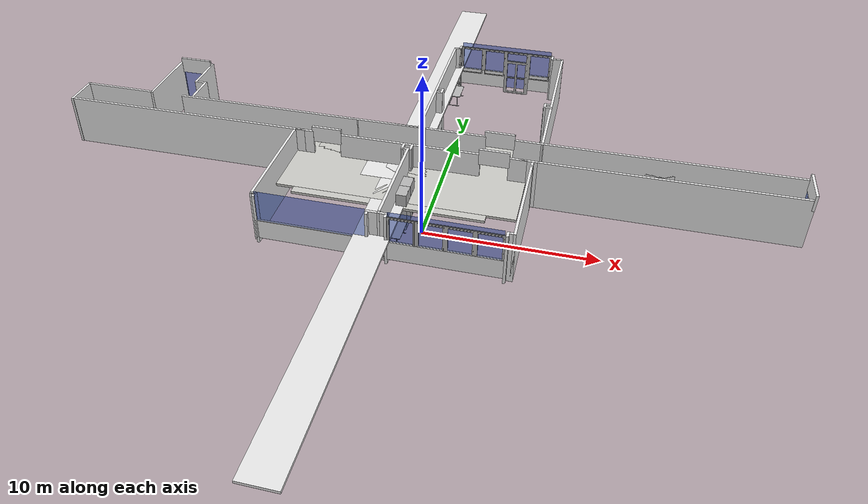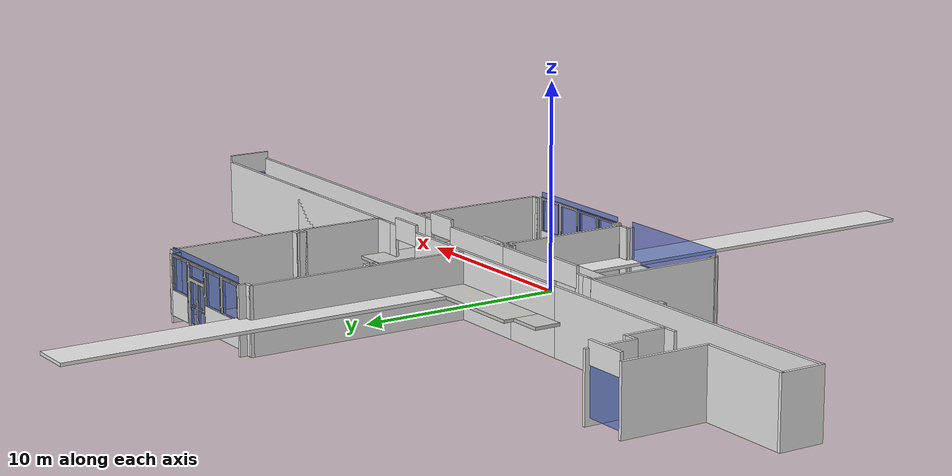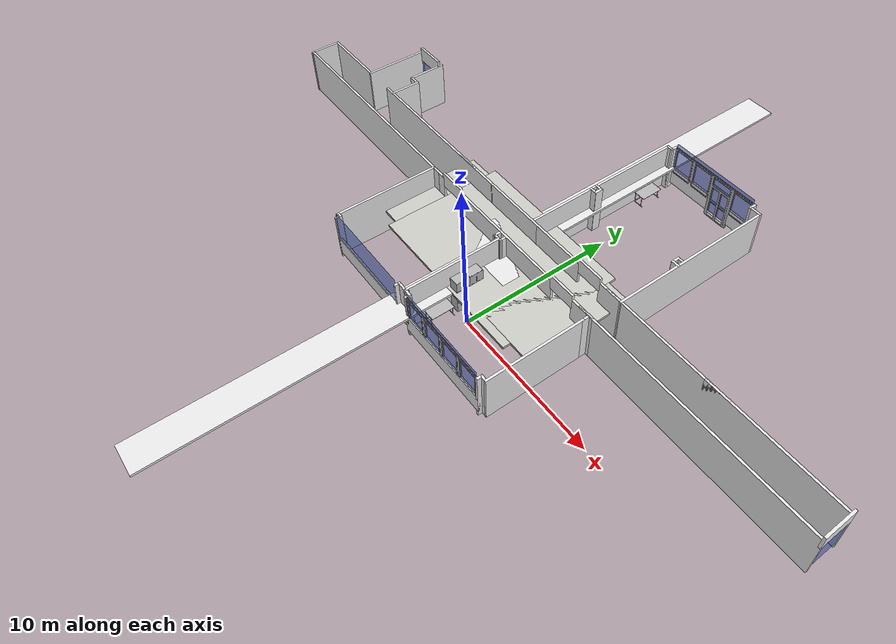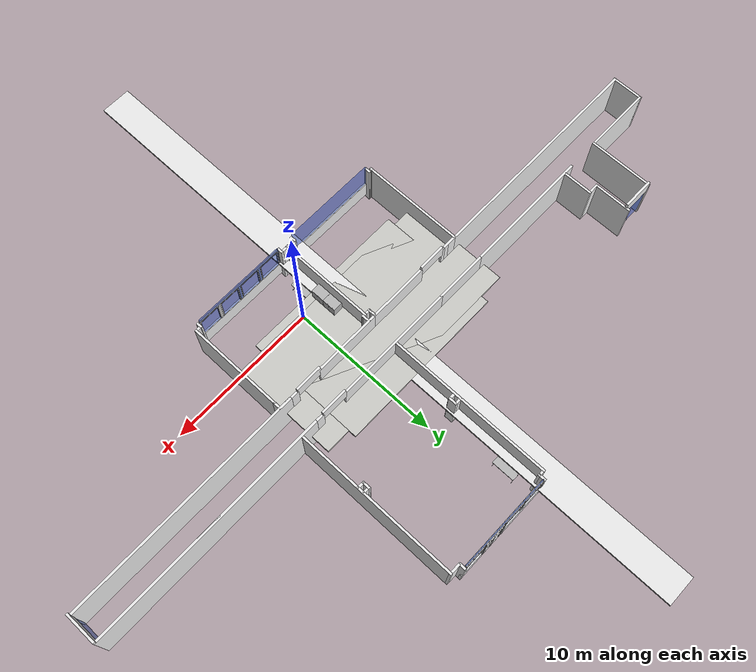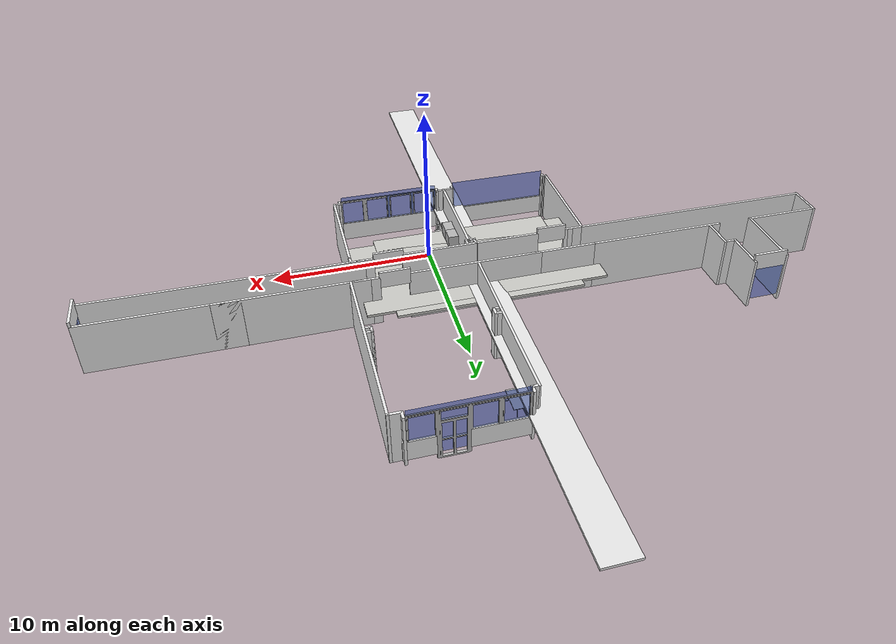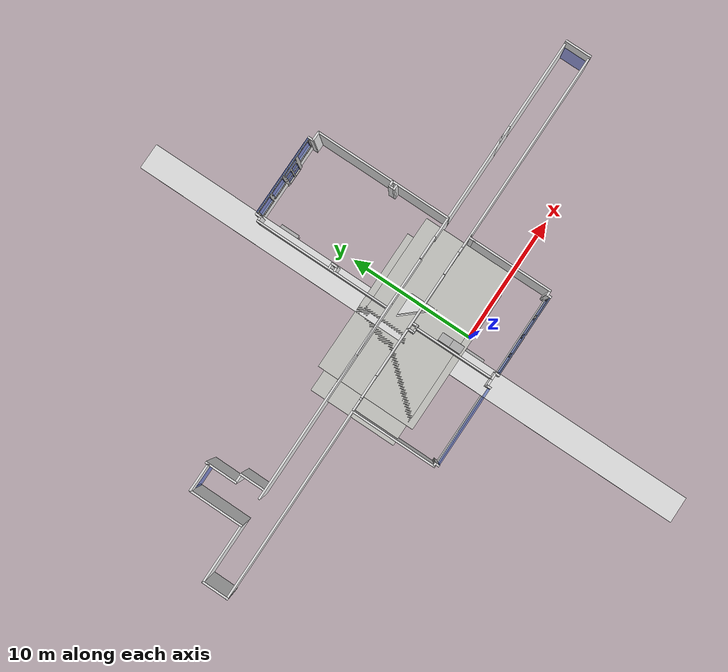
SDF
<sdf version="1.7">
 <world name="default">
  <model name="skola">
   <pose>-1.5 7 0.34 0 -0 0</pose>
   <link name="Wall_0">
    <collision name="Wall_0_Collision">
     <geometry><box><size>4 0.15 3.18</size></box></geometry>
     <pose>0 0 1.25 0 -0 0</pose>
    </collision>
    <visual name="Wall_0_Visual">
     <pose>0 0 1.25 0 -0 0</pose>
     <geometry><box><size>4 0.15 3.18</size></box></geometry>
     <material>
      <script><uri>file://media/materials/scripts/gazebo.material</uri><name>Gazebo/White</name></script>
      <ambient>0.921569 0.807843 0.615686 1</ambient>
     </material>
     <meta><layer>0</layer></meta>
    </visual>
    <pose>-2.46639 -3.07195 0 0 -0 0</pose>
   </link>
   <link name="Wall_1">
    <collision name="Wall_1_Collision">
     <geometry><box><size>0.5 0.15 3.18</size></box></geometry>
     <pose>0 0 1.25 0 -0 0</pose>
    </collision>
    <visual name="Wall_1_Visual">
     <pose>0 0 1.25 0 -0 0</pose>
     <geometry><box><size>0.5 0.15 3.18</size></box></geometry>
     <material>
      <script><uri>file://media/materials/scripts/gazebo.material</uri><name>Gazebo/White</name></script>
      <ambient>0.921569 0.807843 0.615686 1</ambient>
     </material>
     <meta><layer>0</layer></meta>
    </visual>
    <pose>-0.541394 -3.24695 0 0 -0 -1.5708</pose>
   </link>
   <link name="Strop_1">
    <collision name="Strop_1_Collision">
     <geometry><box><size>6.9 14.5 0.15</size></box></geometry>
     <pose>0 0 1.25 0 -0 0</pose>
    </collision>
    <visual name="Strop_1_Visual">
     <pose>0 0 1.25 0 -0 0</pose>
     <geometry><box><size>6.9 14.5 0.15</size></box></geometry>
     <material>
      <script><uri>file://media/materials/scripts/gazebo.material</uri><name>Gazebo/CeilingTiled</name></script>
      <ambient>0.921569 0.807843 0.615686 1</ambient>
     </material>
     <meta><layer>0</layer></meta>
    </visual>
    <pose>-0.541394 -3.24695 0 0 -0 -1.5708</pose>
   </link>
   <link name="Strop_2">
    <collision name="Strop_2_Collision">
     <geometry><box><size>7.9 11.2 0.15</size></box></geometry>
     <pose>0 0 1.25 0 -0 0</pose>
    </collision>
    <visual name="Strop_2_Visual">
     <pose>0 0 1.25 0 -0 0</pose>
     <geometry><box><size>7.9 11.2 0.15</size></box></geometry>
     <material>
      <script><uri>file://media/materials/scripts/gazebo.material</uri><name>Gazebo/CeilingTiled</name></script>
      <ambient>0.921569 0.807843 0.615686 1</ambient>
     </material>
     <meta><layer>0</layer></meta>
    </visual>
    <pose>-0.541394 -3.24695 0 0 -0 -1.5708</pose>
   </link>
   <link name="Strop_3">
    <collision name="Strop_3_Collision">
     <geometry><box><size>44.5 2 0.15</size></box></geometry>
     <pose>0 0 1.25 0 -0 0</pose>
    </collision>
    <visual name="Strop_3_Visual">
     <pose>0 0 1.25 0 -0 0</pose>
     <geometry><box><size>44.5 2 0.15</size></box></geometry>
     <material>
      <script><uri>file://media/materials/scripts/gazebo.material</uri><name>Gazebo/White</name></script>
      <ambient>0.921569 0.807843 0.615686 1</ambient>
     </material>
     <meta><layer>0</layer></meta>
    </visual>
    <pose>-0.541394 -3.24695 0 0 -0 -1.5708</pose>
   </link>
   <link name="Strop_4">
    <collision name="Strop_4_Collision">
     <geometry><box><size>2.8 4.5 0.15</size></box></geometry>
     <pose>0 0 1.25 0 -0 0</pose>
    </collision>
    <visual name="Strop_4_Visual">
     <pose>0 0 1.25 0 -0 0</pose>
     <geometry><box><size>2.8 4.5 0.15</size></box></geometry>
     <material>
      <script><uri>file://media/materials/scripts/gazebo.material</uri><name>Gazebo/White</name></script>
      <ambient>0.921569 0.807843 0.615686 1</ambient>
     </material>
     <meta><layer>0</layer></meta>
    </visual>
    <pose>-0.541394 -3.24695 0 0 -0 -1.5708</pose>
   </link>
   <link name="Wall_100">
    <collision name="Wall_100_Collision">
     <geometry><box><size>0.6 0.15 3.18</size></box></geometry>
     <pose>0 0 1.25 0 -0 0</pose>
    </collision>
    <visual name="Wall_100_Visual">
     <pose>0 0 1.25 0 -0 0</pose>
     <geometry><box><size>0.6 0.15 3.18</size></box></geometry>
     <material>
      <script><uri>file://media/materials/scripts/gazebo.material</uri><name>Gazebo/White</name></script>
      <ambient>0.921569 0.807843 0.615686 1</ambient>
     </material>
     <meta><layer>0</layer></meta>
    </visual>
    <pose>6.98329 -3.07195 0 0 -0 0</pose>
   </link>
   <link name="Wall_102">
    <collision name="Wall_102_Collision">
     <geometry><box><size>2.13 0.15 3.18</size></box></geometry>
     <pose>0 0 1.25 0 -0 0</pose>
    </collision>
    <visual name="Wall_102_Visual">
     <pose>0 0 1.25 0 -0 0</pose>
     <geometry><box><size>2.13 0.15 3.18</size></box></geometry>
     <material>
      <script><uri>file://media/materials/scripts/gazebo.material</uri><name>Gazebo/White</name></script>
      <ambient>0.921569 0.807843 0.615686 1</ambient>
     </material>
     <meta><layer>0</layer></meta>
    </visual>
    <pose>-22.3067 -2.1155 0 0 -0 1.5708</pose>
   </link>
   <link name="Wall_104">
    <collision name="Wall_104_Collision">
     <geometry><box><size>3.44231 0.15 3.18</size></box></geometry>
     <pose>0 0 1.25 0 -0 0</pose>
    </collision>
    <visual name="Wall_104_Visual">
     <pose>0 0 1.25 0 -0 0</pose>
     <geometry><box><size>3.44231 0.15 3.18</size></box></geometry>
     <material>
      <script><uri>file://media/materials/scripts/gazebo.material</uri><name>Gazebo/White</name></script>
      <ambient>0.921569 0.807843 0.615686 1</ambient>
     </material>
     <meta><layer>0</layer></meta>
    </visual>
    <pose>-5.66059 -1.12687 0 0 -0 3.14076</pose>
   </link>
   <link name="Wall_12">
    <collision name="Wall_12_Collision">
     <geometry><box><size>0.25 0.15 3.18</size></box></geometry>
     <pose>0 0 1.25 0 -0 0</pose>
    </collision>
    <visual name="Wall_12_Visual">
     <pose>0 0 1.25 0 -0 0</pose>
     <geometry><box><size>0.25 0.15 3.18</size></box></geometry>
     <material>
      <script><uri>file://media/materials/scripts/gazebo.material</uri><name>Gazebo/White</name></script>
      <ambient>1 1 1 1</ambient>
     </material>
     <meta><layer>0</layer></meta>
    </visual>
    <pose>-0.191552 -9.67173 0 0 -0 -1.57396</pose>
   </link>
   <link name="Wall_13">
    <collision name="Wall_13_Collision">
     <geometry><box><size>0.75 0.15 3.18</size></box></geometry>
     <pose>0 0 1.25 0 -0 0</pose>
    </collision>
    <visual name="Wall_13_Visual">
     <pose>0 0 1.25 0 -0 0</pose>
     <geometry><box><size>0.75 0.15 3.18</size></box></geometry>
     <material>
      <script><uri>file://media/materials/scripts/gazebo.material</uri><name>Gazebo/White</name></script>
      <ambient>0.921569 0.807843 0.615686 1</ambient>
     </material>
     <meta><layer>0</layer></meta>
    </visual>
    <pose>-0.491552 -9.72173 0 0 -0 -3.14084</pose>
   </link>
   <link name="Wall_14">
    <collision name="Wall_14_Collision">
     <geometry><box><size>0.390555 0.15 3.18</size></box></geometry>
     <pose>0 0 1.25 0 -0 0</pose>
    </collision>
    <visual name="Wall_14_Visual">
     <pose>0 0 1.25 0 -0 0</pose>
     <geometry><box><size>0.390555 0.15 3.18</size></box></geometry>
     <material>
      <script><uri>file://media/materials/scripts/gazebo.material</uri><name>Gazebo/White</name></script>
      <ambient>0.921569 0.807843 0.615686 1</ambient>
     </material>
     <meta><layer>0</layer></meta>
    </visual>
    <pose>-0.791394 -9.84223 0 0 -0 -1.5708</pose>
   </link>
   <link name="Wall_15">
    <collision name="Wall_15_Collision">
     <geometry><box><size>6.47657 0.15 1.2</size></box></geometry>
     <pose>0 0 0.6 0 -0 0</pose>
    </collision>
    <visual name="Wall_15_Visual">
     <pose>0 0 0.6 0 -0 0</pose>
     <geometry><box><size>6.47657 0.15 1.2</size></box></geometry>
     <material>
      <script><uri>file://media/materials/scripts/gazebo.material</uri><name>Gazebo/White</name></script>
      <ambient>0.921569 0.807843 0.615686 1</ambient>
     </material>
     <meta><layer>0</layer></meta>
    </visual>
    <pose>-3.94685 -9.95469 0 0 -0 3.13912</pose>
   </link>
   <link name="Wall_16">
    <collision name="Wall_16_Collision">
     <geometry><box><size>6.2 0.05 2</size></box></geometry>
     <pose>0 0 0.6 0 -0 0</pose>
    </collision>
    <visual name="Wall_16_Visual">
     <pose>0 0 0.6 0 -0 0</pose>
     <geometry><box><size>6.2 0.05 2</size></box></geometry>
     <material>
      <script><uri>file://media/materials/scripts/gazebo.material</uri><name>Gazebo/BlueTransparent</name></script>
      <ambient>0.921569 0.807843 0.615686 1</ambient>
     </material>
     <meta><layer>0</layer></meta>
    </visual>
    <pose>-3.94685 -9.95469 1.5 0 -0 3.13912</pose>
   </link>
   <link name="Wall_17">
    <collision name="Wall_17_Collision">
     <geometry><box><size>6.2 0.05 2</size></box></geometry>
     <pose>0 0 0.6 0 -0 0</pose>
    </collision>
    <visual name="Wall_17_Visual">
     <pose>0 0 0.6 0 -0 0</pose>
     <geometry><box><size>6.2 0.05 2</size></box></geometry>
     <material>
      <script><uri>file://media/materials/scripts/gazebo.material</uri><name>Gazebo/BlueTransparent</name></script>
      <ambient>0.921569 0.807843 0.615686 1</ambient>
     </material>
     <meta><layer>0</layer></meta>
    </visual>
    <pose>3.44 -9.95469 1.5 0 -0 3.13912</pose>
   </link>
   <link name="Wall_18">
    <collision name="Wall_18_Collision">
     <geometry><box><size>1.15224 0.15 3.18</size></box></geometry>
     <pose>0 0 1.25 0 -0 0</pose>
    </collision>
    <visual name="Wall_18_Visual">
     <pose>0 0 1.25 0 -0 0</pose>
     <geometry><box><size>1.15224 0.15 3.18</size></box></geometry>
     <material>
      <script><uri>file://media/materials/scripts/gazebo.material</uri><name>Gazebo/White</name></script>
      <ambient>0.921569 0.807843 0.615686 1</ambient>
     </material>
     <meta><layer>0</layer></meta>
    </visual>
    <pose>-6.70571 -3.072 0 0 -0 3.1396</pose>
   </link>
   <link name="Wall_2">
    <collision name="Wall_2_Collision">
     <geometry><box><size>0.25 0.15 3.18</size></box></geometry>
     <pose>0 0 1.25 0 -0 0</pose>
    </collision>
    <visual name="Wall_2_Visual">
     <pose>0 0 1.25 0 -0 0</pose>
     <geometry><box><size>0.25 0.15 3.18</size></box></geometry>
     <material>
      <script><uri>file://media/materials/scripts/gazebo.material</uri><name>Gazebo/White</name></script>
      <ambient>1 1 1 1</ambient>
     </material>
     <meta><layer>0</layer></meta>
    </visual>
    <pose>-0.541394 -3.47195 0 0 -0 -1.5708</pose>
   </link>
   <link name="Wall_22">
    <collision name="Wall_22_Collision">
     <geometry><box><size>6.74777 0.15 3.18</size></box></geometry>
     <pose>0 0 1.25 0 -0 0</pose>
    </collision>
    <visual name="Wall_22_Visual">
     <pose>0 0 1.25 0 -0 0</pose>
     <geometry><box><size>6.74777 0.15 3.18</size></box></geometry>
     <material>
      <script><uri>file://media/materials/scripts/gazebo.material</uri><name>Gazebo/White</name></script>
      <ambient>0.921569 0.807843 0.615686 1</ambient>
     </material>
     <meta><layer>0</layer></meta>
    </visual>
    <pose>-7.30671 -6.4345 0 0 -0 -1.5708</pose>
   </link>
   <link name="Wall_23">
    <collision name="Wall_23_Collision">
     <geometry><box><size>0.15 0.15 3.18</size></box></geometry>
     <pose>0 0 1.25 0 -0 0</pose>
    </collision>
    <visual name="Wall_23_Visual">
     <pose>0 0 1.25 0 -0 0</pose>
     <geometry><box><size>0.15 0.15 3.18</size></box></geometry>
     <material>
      <script><uri>file://media/materials/scripts/gazebo.material</uri><name>Gazebo/White</name></script>
      <ambient>1 1 1 1</ambient>
     </material>
     <meta><layer>0</layer></meta>
    </visual>
    <pose>-7.30671 -9.7035 0 0 -0 0</pose>
   </link>
   <link name="Wall_25">
    <collision name="Wall_25_Collision">
     <geometry><box><size>0.15 0.15 3.18</size></box></geometry>
     <pose>0 0 1.25 0 -0 0</pose>
    </collision>
    <visual name="Wall_25_Visual">
     <pose>0 0 1.25 0 -0 0</pose>
     <geometry><box><size>0.15 0.15 3.18</size></box></geometry>
     <material>
      <script><uri>file://media/materials/scripts/gazebo.material</uri><name>Gazebo/White</name></script>
      <ambient>0.921569 0.807843 0.615686 1</ambient>
     </material>
     <meta><layer>0</layer></meta>
    </visual>
    <pose>-7.30671 -9.7035 0 0 -0 0</pose>
   </link>
   <link name="Wall_27">
    <collision name="Wall_27_Collision">
     <geometry><box><size>0.351876 0.15 3.18</size></box></geometry>
     <pose>0 0 1.25 0 -0 0</pose>
    </collision>
    <visual name="Wall_27_Visual">
     <pose>0 0 1.25 0 -0 0</pose>
     <geometry><box><size>0.351876 0.15 3.18</size></box></geometry>
     <material>
      <script><uri>file://media/materials/scripts/gazebo.material</uri><name>Gazebo/White</name></script>
      <ambient>0.921569 0.807843 0.615686 1</ambient>
     </material>
     <meta><layer>0</layer></meta>
    </visual>
    <pose>-7.20607 -9.69568 0 0 -0 0.077526</pose>
   </link>
   <link name="Wall_28">
    <collision name="Wall_28_Collision">
     <geometry><box><size>0.409049 0.15 3.18</size></box></geometry>
     <pose>0 0 1.25 0 -0 0</pose>
    </collision>
    <visual name="Wall_28_Visual">
     <pose>0 0 1.25 0 -0 0</pose>
     <geometry><box><size>0.409049 0.15 3.18</size></box></geometry>
     <material>
      <script><uri>file://media/materials/scripts/gazebo.material</uri><name>Gazebo/White</name></script>
      <ambient>0.921569 0.807843 0.615686 1</ambient>
     </material>
     <meta><layer>0</layer></meta>
    </visual>
    <pose>-7.09996 -9.81737 0 0 -0 -1.58888</pose>
   </link>
   <link name="Wall_3">
    <collision name="Wall_3_Collision">
     <geometry><box><size>0.5 0.15 3.18</size></box></geometry>
     <pose>0 0 1.25 0 -0 0</pose>
    </collision>
    <visual name="Wall_3_Visual">
     <pose>0 0 1.25 0 -0 0</pose>
     <geometry><box><size>0.5 0.15 3.18</size></box></geometry>
     <material>
      <script><uri>file://media/materials/scripts/gazebo.material</uri><name>Gazebo/White</name></script>
      <ambient>0.921569 0.807843 0.615686 1</ambient>
     </material>
     <meta><layer>0</layer></meta>
    </visual>
    <pose>-0.366552 -3.52173 0 0 -0 0.001291</pose>
   </link>
   <link name="Wall_31">
    <collision name="Wall_31_Collision">
     <geometry><box><size>0.3 0.15 3.18</size></box></geometry>
     <pose>0 0 1.25 0 -0 0</pose>
    </collision>
    <visual name="Wall_31_Visual">
     <pose>0 0 1.25 0 -0 0</pose>
     <geometry><box><size>0.3 0.15 3.18</size></box></geometry>
     <material>
      <script><uri>file://media/materials/scripts/gazebo.material</uri><name>Gazebo/White</name></script>
      <ambient>1 1 1 1</ambient>
     </material>
     <meta><layer>0</layer></meta>
    </visual>
    <pose>-0.116709 -3.5215 0 0 -0 0</pose>
   </link>
   <link name="Wall_34">
    <collision name="Wall_34_Collision">
     <geometry><box><size>4.6 0.15 3.18</size></box></geometry>
     <pose>0 0 1.25 0 -0 0</pose>
    </collision>
    <visual name="Wall_34_Visual">
     <pose>0 0 1.25 0 -0 0</pose>
     <geometry><box><size>4.6 0.15 3.18</size></box></geometry>
     <material>
      <script><uri>file://media/materials/scripts/gazebo.material</uri><name>Gazebo/White</name></script>
      <ambient>0.921569 0.807843 0.615686 1</ambient>
     </material>
     <meta><layer>0</layer></meta>
    </visual>
    <pose>1.68361 -3.07195 0 0 -0 0</pose>
   </link>
   <link name="Wall_41">
    <collision name="Wall_41_Collision">
     <geometry><box><size>0.592756 0.15 3.18</size></box></geometry>
     <pose>0 0 1.25 0 -0 0</pose>
    </collision>
    <visual name="Wall_41_Visual">
     <pose>0 0 1.25 0 -0 0</pose>
     <geometry><box><size>0.592756 0.15 3.18</size></box></geometry>
     <material>
      <script><uri>file://media/materials/scripts/gazebo.material</uri><name>Gazebo/White</name></script>
      <ambient>0.921569 0.807843 0.615686 1</ambient>
     </material>
     <meta><layer>0</layer></meta>
    </visual>
    <pose>-0.043425 -3.30013 0 0 -0 -1.56305</pose>
   </link>
   <link name="Wall_43">
    <collision name="Wall_43_Collision">
     <geometry><box><size>0.55 0.15 3.18</size></box></geometry>
     <pose>0 0 1.25 0 -0 0</pose>
    </collision>
    <visual name="Wall_43_Visual">
     <pose>0 0 1.25 0 -0 0</pose>
     <geometry><box><size>0.55 0.15 3.18</size></box></geometry>
     <material>
      <script><uri>file://media/materials/scripts/gazebo.material</uri><name>Gazebo/White</name></script>
      <ambient>0.921569 0.807843 0.615686 1</ambient>
     </material>
     <meta><layer>0</layer></meta>
    </visual>
    <pose>0.008291 -9.7215 0 0 -0 0</pose>
   </link>
   <link name="Wall_45">
    <collision name="Wall_45_Collision">
     <geometry><box><size>0.4 0.15 3.18</size></box></geometry>
     <pose>0 0 1.25 0 -0 0</pose>
    </collision>
    <visual name="Wall_45_Visual">
     <pose>0 0 1.25 0 -0 0</pose>
     <geometry><box><size>0.4 0.15 3.18</size></box></geometry>
     <material>
      <script><uri>file://media/materials/scripts/gazebo.material</uri><name>Gazebo/White</name></script>
      <ambient>0.921569 0.807843 0.615686 1</ambient>
     </material>
     <meta><layer>0</layer></meta>
    </visual>
    <pose>0.25291 -9.8465 0 0 -0 -1.5708</pose>
   </link>
   <link name="Wall_48">
    <collision name="Wall_48_Collision">
     <geometry><box><size>6.6 0.15 1.2</size></box></geometry>
     <pose>0 0 0.6 0 -0 0</pose>
    </collision>
    <visual name="Wall_48_Visual">
     <pose>0 0 0.6 0 -0 0</pose>
     <geometry><box><size>6.6 0.15 1.2</size></box></geometry>
     <material>
      <script><uri>file://media/materials/scripts/gazebo.material</uri><name>Gazebo/White</name></script>
      <ambient>0.921569 0.807843 0.615686 1</ambient>
     </material>
     <meta><layer>0</layer></meta>
    </visual>
    <pose>3.43329 -9.9715 0 0 -0 0</pose>
   </link>
   <link name="Wall_49">
    <collision name="Wall_49_Collision">
     <geometry><box><size>6.2 0.05 3.1</size></box></geometry>
     <pose>0 0 0.6 0 -0 0</pose>
    </collision>
    <visual name="Wall_49_Visual">
     <pose>0 0 0.6 0 -0 0</pose>
     <geometry><box><size>6.2 0.05 3.1</size></box></geometry>
     <material>
      <script><uri>file://media/materials/scripts/gazebo.material</uri><name>Gazebo/BlueTransparent</name></script>
      <ambient>0.921569 0.807843 0.615686 1</ambient>
     </material>
     <meta><layer>0</layer></meta>
    </visual>
    <pose>3.43329 9.95 1 0 -0 3.14</pose>
   </link>
   <link name="Wall_5">
    <collision name="Wall_5_Collision">
     <geometry><box><size>6.25 0.15 3.18</size></box></geometry>
     <pose>0 0 1.25 0 -0 0</pose>
    </collision>
    <visual name="Wall_5_Visual">
     <pose>0 0 1.25 0 -0 0</pose>
     <geometry><box><size>6.25 0.15 3.18</size></box></geometry>
     <material>
      <script><uri>file://media/materials/scripts/gazebo.material</uri><name>Gazebo/White</name></script>
      <ambient>0.921569 0.807843 0.615686 1</ambient>
     </material>
     <meta><layer>0</layer></meta>
    </visual>
    <pose>-0.191552 -6.57173 0 0 -0 -1.57075</pose>
   </link>
   <link name="Wall_50">
    <collision name="Wall_50_Collision">
     <geometry><box><size>0.4 0.15 3.18</size></box></geometry>
     <pose>0 0 1.25 0 -0 0</pose>
    </collision>
    <visual name="Wall_50_Visual">
     <pose>0 0 1.25 0 -0 0</pose>
     <geometry><box><size>0.4 0.15 3.18</size></box></geometry>
     <material>
      <script><uri>file://media/materials/scripts/gazebo.material</uri><name>Gazebo/White</name></script>
      <ambient>0.921569 0.807843 0.615686 1</ambient>
     </material>
     <meta><layer>0</layer></meta>
    </visual>
    <pose>6.65829 -9.8465 0 0 -0 1.5708</pose>
   </link>
   <link name="Wall_53">
    <collision name="Wall_53_Collision">
     <geometry><box><size>0.5 0.15 3.18</size></box></geometry>
     <pose>0 0 1.25 0 -0 0</pose>
    </collision>
    <visual name="Wall_53_Visual">
     <pose>0 0 1.25 0 -0 0</pose>
     <geometry><box><size>0.5 0.15 3.18</size></box></geometry>
     <material>
      <script><uri>file://media/materials/scripts/gazebo.material</uri><name>Gazebo/White</name></script>
      <ambient>0.921569 0.807843 0.615686 1</ambient>
     </material>
     <meta><layer>0</layer></meta>
    </visual>
    <pose>6.83329 -9.7215 0 0 -0 0</pose>
   </link>
   <link name="Wall_59">
    <collision name="Wall_59_Collision">
     <geometry><box><size>6.35 0.15 3.18</size></box></geometry>
     <pose>0 0 1.25 0 -0 0</pose>
    </collision>
    <visual name="Wall_59_Visual">
     <pose>0 0 1.25 0 -0 0</pose>
     <geometry><box><size>6.35 0.15 3.18</size></box></geometry>
     <material>
      <script><uri>file://media/materials/scripts/gazebo.material</uri><name>Gazebo/White</name></script>
      <ambient>0.921569 0.807843 0.615686 1</ambient>
     </material>
     <meta><layer>0</layer></meta>
    </visual>
    <pose>7.00829 -6.6215 0 0 -0 1.5708</pose>
   </link>
   <link name="Wall_65">
    <collision name="Wall_65_Collision">
     <geometry><box><size>0.58 0.15 3.18</size></box></geometry>
     <pose>0 0 1.25 0 -0 0</pose>
    </collision>
    <visual name="Wall_65_Visual">
     <pose>0 0 1.25 0 -0 0</pose>
     <geometry><box><size>0.58 0.15 3.18</size></box></geometry>
     <material>
      <script><uri>file://media/materials/scripts/gazebo.material</uri><name>Gazebo/White</name></script>
      <ambient>0.921569 0.807843 0.615686 1</ambient>
     </material>
     <meta><layer>0</layer></meta>
    </visual>
    <pose>7.00829 -3.3065 0 0 -0 1.5708</pose>
   </link>
   <link name="Wall_67">
    <collision name="Wall_67_Collision">
     <geometry><box><size>1.2 0.15 3.18</size></box></geometry>
     <pose>0 0 1.25 0 -0 0</pose>
    </collision>
    <visual name="Wall_67_Visual">
     <pose>0 0 1.25 0 -0 0</pose>
     <geometry><box><size>1.2 0.15 3.18</size></box></geometry>
     <material>
      <script><uri>file://media/materials/scripts/gazebo.material</uri><name>Gazebo/White</name></script>
      <ambient>0.921569 0.807843 0.615686 1</ambient>
     </material>
     <meta><layer>0</layer></meta>
    </visual>
    <pose>6.23329 -3.07195 0 0 -0 3.14159</pose>
   </link>
   <link name="Wall_69">
    <collision name="Wall_69_Collision">
     <geometry><box><size>8 0.15 3.18</size></box></geometry>
     <pose>0 0 1.25 0 -0 0</pose>
    </collision>
    <visual name="Wall_69_Visual">
     <pose>0 0 1.25 0 -0 0</pose>
     <geometry><box><size>8 0.15 3.18</size></box></geometry>
     <material>
      <script><uri>file://media/materials/scripts/gazebo.material</uri><name>Gazebo/White</name></script>
      <ambient>0.921569 0.807843 0.615686 1</ambient>
     </material>
     <meta><layer>0</layer></meta>
    </visual>
    <pose>-0.03 -1.12824 0 0 -0 3.14159</pose>
   </link>
   <link name="Wall_73">
    <collision name="Wall_73_Collision">
     <geometry><box><size>1.75 0.15 3.18</size></box></geometry>
     <pose>0 0 1.25 0 -0 0</pose>
    </collision>
    <visual name="Wall_73_Visual">
     <pose>0 0 1.25 0 -0 0</pose>
     <geometry><box><size>1.75 0.15 3.18</size></box></geometry>
     <material>
      <script><uri>file://media/materials/scripts/gazebo.material</uri><name>Gazebo/White</name></script>
      <ambient>0.921569 0.807843 0.615686 1</ambient>
     </material>
     <meta><layer>0</layer></meta>
    </visual>
    <pose>6.51211 -1.12837 0 0 -0 -0.000159</pose>
   </link>
   <link name="Wall_75">
    <collision name="Wall_75_Collision">
     <geometry><box><size>10.9 0.15 3.18</size></box></geometry>
     <pose>0 0 1.25 0 -0 0</pose>
    </collision>
    <visual name="Wall_75_Visual">
     <pose>0 0 1.25 0 -0 0</pose>
     <geometry><box><size>10.9 0.15 3.18</size></box></geometry>
     <material>
      <script><uri>file://media/materials/scripts/gazebo.material</uri><name>Gazebo/White</name></script>
      <ambient>0.921569 0.807843 0.615686 1</ambient>
     </material>
     <meta><layer>0</layer></meta>
    </visual>
    <pose>7.31229 4.2465 0 0 -0 1.5708</pose>
   </link>
   <link name="Wall_77">
    <collision name="Wall_77_Collision">
     <geometry><box><size>0.75 0.15 3.18</size></box></geometry>
     <pose>0 0 1.25 0 -0 0</pose>
    </collision>
    <visual name="Wall_77_Visual">
     <pose>0 0 1.25 0 -0 0</pose>
     <geometry><box><size>0.75 0.15 3.18</size></box></geometry>
     <material>
      <script><uri>file://media/materials/scripts/gazebo.material</uri><name>Gazebo/White</name></script>
      <ambient>0.921569 0.807843 0.615686 1</ambient>
     </material>
     <meta><layer>0</layer></meta>
    </visual>
    <pose>7.01229 9.6215 0 0 -0 3.14159</pose>
   </link>
   <link name="Wall_79">
    <collision name="Wall_79_Collision">
     <geometry><box><size>0.5 0.15 3.18</size></box></geometry>
     <pose>0 0 1.25 0 -0 0</pose>
    </collision>
    <visual name="Wall_79_Visual">
     <pose>0 0 1.25 0 -0 0</pose>
     <geometry><box><size>0.5 0.15 3.18</size></box></geometry>
     <material>
      <script><uri>file://media/materials/scripts/gazebo.material</uri><name>Gazebo/White</name></script>
      <ambient>0.921569 0.807843 0.615686 1</ambient>
     </material>
     <meta><layer>0</layer></meta>
    </visual>
    <pose>6.63 9.7965 0 0 -0 1.5708</pose>
   </link>
   <link name="Wall_80">
    <collision name="Wall_80_Collision">
     <geometry><box><size>3.1 0.15 1.2</size></box></geometry>
     <pose>0 0 0.6 0 -0 0</pose>
    </collision>
    <visual name="Wall_80_Visual">
     <pose>0 0 0.6 0 -0 0</pose>
     <geometry><box><size>3.1 0.15 1.2</size></box></geometry>
     <material>
      <script><uri>file://media/materials/scripts/gazebo.material</uri><name>Gazebo/White</name></script>
      <ambient>0.921569 0.807843 0.615686 1</ambient>
     </material>
     <meta><layer>0</layer></meta>
    </visual>
    <pose>1.82 9.9715 0 0 -0 3.14159</pose>
   </link>
   <link name="Wall_81">
    <collision name="Wall_81_Collision">
     <geometry><box><size>1.7 0.15 1.2</size></box></geometry>
     <pose>0 0 0.6 0 -0 0</pose>
    </collision>
    <visual name="Wall_81_Visual">
     <pose>0 0 0.6 0 -0 0</pose>
     <geometry><box><size>1.7 0.15 1.2</size></box></geometry>
     <material>
      <script><uri>file://media/materials/scripts/gazebo.material</uri><name>Gazebo/White</name></script>
      <ambient>0.921569 0.807843 0.615686 1</ambient>
     </material>
     <meta><layer>0</layer></meta>
    </visual>
    <pose>5.92 9.9715 0 0 -0 3.14159</pose>
   </link>
   <link name="Wall_82">
    <collision name="Wall_82_Collision">
     <geometry><box><size>0.5 0.15 3.18</size></box></geometry>
     <pose>0 0 1.25 0 -0 0</pose>
    </collision>
    <visual name="Wall_82_Visual">
     <pose>0 0 1.25 0 -0 0</pose>
     <geometry><box><size>0.5 0.15 3.18</size></box></geometry>
     <material>
      <script><uri>file://media/materials/scripts/gazebo.material</uri><name>Gazebo/White</name></script>
      <ambient>0.921569 0.807843 0.615686 1</ambient>
     </material>
     <meta><layer>0</layer></meta>
    </visual>
    <pose>0.212291 9.7965 0 0 -0 -1.5708</pose>
   </link>
   <link name="Wall_87">
    <collision name="Wall_87_Collision">
     <geometry><box><size>0.5 0.15 3.18</size></box></geometry>
     <pose>0 0 1.25 0 -0 0</pose>
    </collision>
    <visual name="Wall_87_Visual">
     <pose>0 0 1.25 0 -0 0</pose>
     <geometry><box><size>0.5 0.15 3.18</size></box></geometry>
     <material>
      <script><uri>file://media/materials/scripts/gazebo.material</uri><name>Gazebo/White</name></script>
      <ambient>0.921569 0.807843 0.615686 1</ambient>
     </material>
     <meta><layer>0</layer></meta>
    </visual>
    <pose>0.037291 9.6215 0 0 -0 3.14159</pose>
   </link>
   <link name="Wall_88">
    <collision name="Wall_88_Collision">
     <geometry><box><size>10.75 0.15 3.18</size></box></geometry>
     <pose>0 0 1.25 0 -0 0</pose>
    </collision>
    <visual name="Wall_88_Visual">
     <pose>0 0 1.25 0 -0 0</pose>
     <geometry><box><size>10.75 0.15 3.18</size></box></geometry>
     <material>
      <script><uri>file://media/materials/scripts/gazebo.material</uri><name>Gazebo/White</name></script>
      <ambient>0.921569 0.807843 0.615686 1</ambient>
     </material>
     <meta><layer>0</layer></meta>
    </visual>
    <pose>-0.137709 4.3215 0 0 -0 -1.5708</pose>
   </link>
   <link name="Wall_90">
    <collision name="Wall_90_Collision">
     <geometry><box><size>0.55 0.15 3.18</size></box></geometry>
     <pose>0 0 1.25 0 -0 0</pose>
    </collision>
    <visual name="Wall_90_Visual">
     <pose>0 0 1.25 0 -0 0</pose>
     <geometry><box><size>0.55 0.15 3.18</size></box></geometry>
     <material>
      <script><uri>file://media/materials/scripts/gazebo.material</uri><name>Gazebo/White</name></script>
      <ambient>0.921569 0.807843 0.615686 1</ambient>
     </material>
     <meta><layer>0</layer></meta>
    </visual>
    <pose>7.11229 3.0625 0 0 -0 3.14159</pose>
   </link>
   <link name="Wall_92">
    <collision name="Wall_92_Collision">
     <geometry><box><size>0.55 0.15 3.18</size></box></geometry>
     <pose>0 0 1.25 0 -0 0</pose>
    </collision>
    <visual name="Wall_92_Visual">
     <pose>0 0 1.25 0 -0 0</pose>
     <geometry><box><size>0.55 0.15 3.18</size></box></geometry>
     <material>
      <script><uri>file://media/materials/scripts/gazebo.material</uri><name>Gazebo/White</name></script>
      <ambient>0.921569 0.807843 0.615686 1</ambient>
     </material>
     <meta><layer>0</layer></meta>
    </visual>
    <pose>6.91229 3.2625 0 0 -0 1.5708</pose>
   </link>
   <link name="Wall_94">
    <collision name="Wall_94_Collision">
     <geometry><box><size>0.5 0.15 3.18</size></box></geometry>
     <pose>0 0 1.25 0 -0 0</pose>
    </collision>
    <visual name="Wall_94_Visual">
     <pose>0 0 1.25 0 -0 0</pose>
     <geometry><box><size>0.5 0.15 3.18</size></box></geometry>
     <material>
      <script><uri>file://media/materials/scripts/gazebo.material</uri><name>Gazebo/White</name></script>
      <ambient>0.921569 0.807843 0.615686 1</ambient>
     </material>
     <meta><layer>0</layer></meta>
    </visual>
    <pose>7.08729 3.4625 0 0 -0 0</pose>
   </link>
   <link name="Wall_98">
    <collision name="Wall_98_Collision">
     <geometry><box><size>2.1 0.15 1.01</size></box></geometry>
     <pose>0 0 1.25 0 -0 0</pose>
    </collision>
    <visual name="Wall_98_Visual">
     <pose>0 0 1.25 0 -0 0</pose>
     <geometry><box><size>2.1 0.15 1.01</size></box></geometry>
     <material>
      <script><uri>file://media/materials/scripts/gazebo.material</uri><name>Gazebo/White</name></script>
      <ambient>0.921569 0.807843 0.615686 1</ambient>
     </material>
     <meta><layer>0</layer></meta>
    </visual>
    <pose>22.1 -2.1085 1.425 0 -0 -1.5708</pose>
   </link>
   <link name="Wall_119">
    <collision name="Wall_119_Collision">
     <geometry><box><size>2 0.07 2.1</size></box></geometry>
     <pose>0 0 1.25 0 -0 0</pose>
    </collision>
    <visual name="Wall_119_Visual">
     <pose>0 0 1.25 0 -0 0</pose>
     <geometry><box><size>2 0.07 2.1</size></box></geometry>
     <material>
      <script><uri>file://media/materials/scripts/gazebo.material</uri><name>Gazebo/BlueTransparent</name></script>
      <ambient>0.921569 0.807843 0.615686 1</ambient>
     </material>
     <meta><layer>0</layer></meta>
    </visual>
    <pose>22.1 -2.1085 -0.2 0 -0 -1.5708</pose>
   </link>
   <link name="Wall_99">
    <collision name="Wall_99_Collision">
     <geometry><box><size>0.55 0.15 3.18</size></box></geometry>
     <pose>0 0 1.25 0 -0 0</pose>
    </collision>
    <visual name="Wall_99_Visual">
     <pose>0 0 1.25 0 -0 0</pose>
     <geometry><box><size>0.55 0.15 3.18</size></box></geometry>
     <material>
      <script><uri>file://media/materials/scripts/gazebo.material</uri><name>Gazebo/White</name></script>
      <ambient>0.921569 0.807843 0.615686 1</ambient>
     </material>
     <meta><layer>0</layer></meta>
    </visual>
    <pose>0.265 3.525 0 0 -0 1.5708</pose>
   </link>
   <link name="Wall_97">
    <collision name="Wall_97_Collision">
     <geometry><box><size>0.55 0.15 3.18</size></box></geometry>
     <pose>0 0 1.25 0 -0 0</pose>
    </collision>
    <visual name="Wall_97_Visual">
     <pose>0 0 1.25 0 -0 0</pose>
     <geometry><box><size>0.55 0.15 3.18</size></box></geometry>
     <material>
      <script><uri>file://media/materials/scripts/gazebo.material</uri><name>Gazebo/White</name></script>
      <ambient>0.921569 0.807843 0.615686 1</ambient>
     </material>
     <meta><layer>0</layer></meta>
    </visual>
    <pose>0.064 3.3 0 0 -0 3.14159</pose>
   </link>
   <link name="Wall_96">
    <collision name="Wall_96_Collision">
     <geometry><box><size>0.55 0.15 3.18</size></box></geometry>
     <pose>0 0 1.25 0 -0 0</pose>
    </collision>
    <visual name="Wall_96_Visual">
     <pose>0 0 1.25 0 -0 0</pose>
     <geometry><box><size>0.55 0.15 3.18</size></box></geometry>
     <material>
      <script><uri>file://media/materials/scripts/gazebo.material</uri><name>Gazebo/White</name></script>
      <ambient>0.921569 0.807843 0.615686 1</ambient>
     </material>
     <meta><layer>0</layer></meta>
    </visual>
    <pose>0.064 3.725 0 0 -0 3.14159</pose>
   </link>
   <link name="Wall_107">
    <collision name="Wall_107_Collision">
     <geometry><box><size>16 0.15 3.18</size></box></geometry>
     <pose>0 0 1.25 0 -0 0</pose>
    </collision>
    <visual name="Wall_107_Visual">
     <pose>0 0 1.25 0 -0 0</pose>
     <geometry><box><size>16 0.15 3.18</size></box></geometry>
     <material>
      <script><uri>file://media/materials/scripts/gazebo.material</uri><name>Gazebo/White</name></script>
      <ambient>0.921569 0.807843 0.615686 1</ambient>
     </material>
     <meta><layer>0</layer></meta>
    </visual>
    <pose>-7.7 -1.12824 0 0 -0 3.14159</pose>
   </link>
   <link name="Wall_103">
    <collision name="Wall_103_Collision">
     <geometry><box><size>16 0.15 3.18</size></box></geometry>
     <pose>0 0 1.25 0 -0 0</pose>
    </collision>
    <visual name="Wall_103_Visual">
     <pose>0 0 1.25 0 -0 0</pose>
     <geometry><box><size>16 0.15 3.18</size></box></geometry>
     <material>
      <script><uri>file://media/materials/scripts/gazebo.material</uri><name>Gazebo/White</name></script>
      <ambient>0.921569 0.807843 0.615686 1</ambient>
     </material>
     <meta><layer>0</layer></meta>
    </visual>
    <pose>-14.38 -3.072 0 0 -0 3.14159</pose>
   </link>
   <link name="Wall_106">
    <collision name="Wall_106_Collision">
     <geometry><box><size>16 0.15 3.18</size></box></geometry>
     <pose>0 0 1.25 0 -0 0</pose>
    </collision>
    <visual name="Wall_106_Visual">
     <pose>0 0 1.25 0 -0 0</pose>
     <geometry><box><size>16 0.15 3.18</size></box></geometry>
     <material>
      <script><uri>file://media/materials/scripts/gazebo.material</uri><name>Gazebo/White</name></script>
      <ambient>0.921569 0.807843 0.615686 1</ambient>
     </material>
     <meta><layer>0</layer></meta>
    </visual>
    <pose>14.17 -3.07195 0 0 -0 3.14159</pose>
   </link>
   <link name="Wall_108">
    <collision name="Wall_108_Collision">
     <geometry><box><size>16 0.15 3.18</size></box></geometry>
     <pose>0 0 1.25 0 -0 0</pose>
    </collision>
    <visual name="Wall_108_Visual">
     <pose>0 0 1.25 0 -0 0</pose>
     <geometry><box><size>16 0.15 3.18</size></box></geometry>
     <material>
      <script><uri>file://media/materials/scripts/gazebo.material</uri><name>Gazebo/White</name></script>
      <ambient>0.921569 0.807843 0.615686 1</ambient>
     </material>
     <meta><layer>0</layer></meta>
    </visual>
    <pose>14.17 -1.12824 0 0 -0 3.14159</pose>
   </link>
   <link name="Wall_109">
    <collision name="Wall_109_Collision">
     <geometry><box><size>4.5 0.15 3.18</size></box></geometry>
     <pose>0 0 1.25 0 -0 0</pose>
    </collision>
    <visual name="Wall_109_Visual">
     <pose>0 0 1.25 0 -0 0</pose>
     <geometry><box><size>4.5 0.15 3.18</size></box></geometry>
     <material>
      <script><uri>file://media/materials/scripts/gazebo.material</uri><name>Gazebo/White</name></script>
      <ambient>0.921569 0.807843 0.615686 1</ambient>
     </material>
     <meta><layer>0</layer></meta>
    </visual>
    <pose>-20.1 -1.12824 0 0 -0 3.14159</pose>
   </link>
   <link name="Wall_110">
    <collision name="Wall_110_Collision">
     <geometry><box><size>4.3 0.15 3.18</size></box></geometry>
     <pose>0 0 1.25 0 -0 0</pose>
    </collision>
    <visual name="Wall_110_Visual">
     <pose>0 0 1.25 0 -0 0</pose>
     <geometry><box><size>4.3 0.15 3.18</size></box></geometry>
     <material>
      <script><uri>file://media/materials/scripts/gazebo.material</uri><name>Gazebo/White</name></script>
      <ambient>0.921569 0.807843 0.615686 1</ambient>
     </material>
     <meta><layer>0</layer></meta>
    </visual>
    <pose>-17.8 0.94176 0 0 -0 1.57</pose>
   </link>
   <link name="Wall_111">
    <collision name="Wall_111_Collision">
     <geometry><box><size>2 0.15 3.18</size></box></geometry>
     <pose>0 0 1.25 0 -0 0</pose>
    </collision>
    <visual name="Wall_111_Visual">
     <pose>0 0 1.25 0 -0 0</pose>
     <geometry><box><size>2 0.15 3.18</size></box></geometry>
     <material>
      <script><uri>file://media/materials/scripts/gazebo.material</uri><name>Gazebo/White</name></script>
      <ambient>0.921569 0.807843 0.615686 1</ambient>
     </material>
     <meta><layer>0</layer></meta>
    </visual>
    <pose>-15 -0.12824 0 0 -0 1.57</pose>
   </link>
   <link name="Wall_112">
    <collision name="Wall_112_Collision">
     <geometry><box><size>2.55 0.15 3.18</size></box></geometry>
     <pose>0 0 1.25 0 -0 0</pose>
    </collision>
    <visual name="Wall_112_Visual">
     <pose>0 0 1.25 0 -0 0</pose>
     <geometry><box><size>2.55 0.15 3.18</size></box></geometry>
     <material>
      <script><uri>file://media/materials/scripts/gazebo.material</uri><name>Gazebo/White</name></script>
      <ambient>0.921569 0.807843 0.615686 1</ambient>
     </material>
     <meta><layer>0</layer></meta>
    </visual>
    <pose>-15.65 2 0 0 -0 1.57</pose>
   </link>
   <link name="Wall_113">
    <collision name="Wall_113_Collision">
     <geometry><box><size>0.65 0.15 3.18</size></box></geometry>
     <pose>0 0 1.25 0 -0 0</pose>
    </collision>
    <visual name="Wall_113_Visual">
     <pose>0 0 1.25 0 -0 0</pose>
     <geometry><box><size>0.65 0.15 3.18</size></box></geometry>
     <material>
      <script><uri>file://media/materials/scripts/gazebo.material</uri><name>Gazebo/White</name></script>
      <ambient>0.921569 0.807843 0.615686 1</ambient>
     </material>
     <meta><layer>0</layer></meta>
    </visual>
    <pose>-15.4 0.795 0 0 -0 3.14159</pose>
   </link>
   <link name="Wall_114">
    <collision name="Wall_114_Collision">
     <geometry><box><size>1.65 0.15 3.18</size></box></geometry>
     <pose>0 0 1.25 0 -0 0</pose>
    </collision>
    <visual name="Wall_114_Visual">
     <pose>0 0 1.25 0 -0 0</pose>
     <geometry><box><size>1.65 0.15 3.18</size></box></geometry>
     <material>
      <script><uri>file://media/materials/scripts/gazebo.material</uri><name>Gazebo/White</name></script>
      <ambient>0.921569 0.807843 0.615686 1</ambient>
     </material>
     <meta><layer>0</layer></meta>
    </visual>
    <pose>14.17 -1.12824 0 0 -0 3.14159</pose>
   </link>
   <link name="Wall_115">
    <collision name="Wall_115_Collision">
     <geometry><box><size>1.8 0.15 1.01</size></box></geometry>
     <pose>0 0 1.25 0 -0 0</pose>
    </collision>
    <visual name="Wall_115_Visual">
     <pose>0 0 1.25 0 -0 0</pose>
     <geometry><box><size>1.8 0.15 1.01</size></box></geometry>
     <material>
      <script><uri>file://media/materials/scripts/gazebo.material</uri><name>Gazebo/White</name></script>
      <ambient>0.921569 0.807843 0.615686 1</ambient>
     </material>
     <meta><layer>0</layer></meta>
    </visual>
    <pose>-5.3 -3.072 1.425 0 -0 3.14159</pose>
   </link>
   <link name="Wall_116">
    <collision name="Wall_116_Collision">
     <geometry><box><size>1.8 0.15 1.01</size></box></geometry>
     <pose>0 0 1.25 0 -0 0</pose>
    </collision>
    <visual name="Wall_116_Visual">
     <pose>0 0 1.25 0 -0 0</pose>
     <geometry><box><size>1.8 0.15 1.01</size></box></geometry>
     <material>
      <script><uri>file://media/materials/scripts/gazebo.material</uri><name>Gazebo/White</name></script>
      <ambient>0.921569 0.807843 0.615686 1</ambient>
     </material>
     <meta><layer>0</layer></meta>
    </visual>
    <pose>4.8 -3.072 1.425 0 -0 3.14159</pose>
   </link>
   <link name="Wall_117">
    <collision name="Wall_117_Collision">
     <geometry><box><size>1.8 0.15 1.01</size></box></geometry>
     <pose>0 0 1.25 0 -0 0</pose>
    </collision>
    <visual name="Wall_117_Visual">
     <pose>0 0 1.25 0 -0 0</pose>
     <geometry><box><size>1.8 0.15 1.01</size></box></geometry>
     <material>
      <script><uri>file://media/materials/scripts/gazebo.material</uri><name>Gazebo/White</name></script>
      <ambient>0.921569 0.807843 0.615686 1</ambient>
     </material>
     <meta><layer>0</layer></meta>
    </visual>
    <pose>4.8 -1.12824 1.425 0 -0 3.14159</pose>
   </link>
   <link name="Wall_118">
    <collision name="Wall_118_Collision">
     <geometry><box><size>2.1 0.15 1.03</size></box></geometry>
     <pose>0 0 1.25 0 -0 0</pose>
    </collision>
    <visual name="Wall_118_Visual">
     <pose>0 0 1.25 0 -0 0</pose>
     <geometry><box><size>2.1 0.15 1.03</size></box></geometry>
     <material>
      <script><uri>file://media/materials/scripts/gazebo.material</uri><name>Gazebo/White</name></script>
      <ambient>0.921569 0.807843 0.615686 1</ambient>
     </material>
     <meta><layer>0</layer></meta>
    </visual>
    <pose>-16.7 3 1.42 0 -0 3.14159</pose>
   </link>
   <link name="Wall_120">
    <collision name="Wall_120_Collision">
     <geometry><box><size>2 0.07 2.1</size></box></geometry>
     <pose>0 0 1.25 0 -0 0</pose>
    </collision>
    <visual name="Wall_120_Visual">
     <pose>0 0 1.25 0 -0 0</pose>
     <geometry><box><size>2 0.07 2.1</size></box></geometry>
     <material>
      <script><uri>file://media/materials/scripts/gazebo.material</uri><name>Gazebo/BlueTransparent</name></script>
      <ambient>0.921569 0.807843 0.615686 1</ambient>
     </material>
     <meta><layer>0</layer></meta>
    </visual>
    <pose>-16.7 3 -0.2 0 -0 3.14159</pose>
   </link>
   <static>1</static>
  </model>
  <model name="stul_150_SE_1_112_1">
   <pose>-1.2 -1 0 0 -0 1.57</pose>
   <static>1</static>
   <link name="stul_150_collision">
    <collision name="stul_150_collision">
     <geometry><mesh><uri>model://stul_150/meshes/model.dae</uri></mesh></geometry>
    </collision>
    <visual name="stul_150_mesh">
     <cast_shadows>0</cast_shadows>
     <geometry><mesh><uri>model://stul_150/meshes/model.dae</uri></mesh></geometry>
     <material>
      <script>
       <uri>model://stul_150/material/scripts</uri>
       <uri>model://stul_150/material/textures</uri>
       <name>stul_150/Diffuse</name>
      </script>
     </material>
    </visual>
   </link>
  </model>
  <model name="skrin_90_1_112_1">
   <pose>-1.2 1.35 0 0 -0 1.57</pose>
   <static>1</static>
   <link name="skrin_90_collision">
    <collision name="skrin_90_collision">
     <geometry><mesh><uri>model://skrin_90/meshes/model.dae</uri></mesh></geometry>
    </collision>
    <visual name="skrin_90">
     <cast_shadows>0</cast_shadows>
     <geometry><mesh><uri>model://skrin_90/meshes/model.dae</uri></mesh></geometry>
     <material>
      <script>
       <uri>model://skrin_90/material/scripts</uri>
       <uri>model://skrin_90/material/textures</uri>
       <name>skrin_90/Diffuse</name>
      </script>
     </material>
    </visual>
   </link>
  </model>
  <model name="skrin_90_1_112_2">
   <pose>-1.2 0.448 0 0 -0 1.57</pose>
   <static>1</static>
   <link name="skrin_90_collision">
    <collision name="skrin_90_collision">
     <geometry><mesh><uri>model://skrin_90/meshes/model.dae</uri></mesh></geometry>
    </collision>
    <visual name="skrin_90">
     <cast_shadows>0</cast_shadows>
     <geometry><mesh><uri>model://skrin_90/meshes/model.dae</uri></mesh></geometry>
     <material>
      <script>
       <uri>model://skrin_90/material/scripts</uri>
       <uri>model://skrin_90/material/textures</uri>
       <name>skrin_90/Diffuse</name>
      </script>
     </material>
    </visual>
   </link>
  </model>
  <model name="okna_mistnost1">
   <pose>-1.16 -3.01 1.18 0 -0 0</pose>
   <static>1</static>
   <link name="okna_collision">
    <collision name="okna_collision">
     <geometry><mesh><uri>model://okna/meshes/model.dae</uri></mesh></geometry>
    </collision>
    <visual name="okna_mesh">
     <cast_shadows>0</cast_shadows>
     <geometry><mesh><uri>model://okna/meshes/model.dae</uri></mesh></geometry>
     <material>
      <script>
       <uri>model://okna/material/scripts</uri>
       <uri>model://okna/material/textures</uri>
       <name>okna/Diffuse</name>
      </script>
     </material>
    </visual>
   </link>
  </model>
  <model name="stul_150_mistnost2_1">
   <pose>-1.15 14.85 0 0 -0 1.57</pose>
   <static>1</static>
   <link name="stul_150_collision">
    <collision name="stul_150_collision">
     <geometry><mesh><uri>model://stul_150/meshes/model.dae</uri></mesh></geometry>
    </collision>
    <visual name="stul_150_mesh">
     <cast_shadows>0</cast_shadows>
     <geometry><mesh><uri>model://stul_150/meshes/model.dae</uri></mesh></geometry>
     <material>
      <script>
       <uri>model://stul_150/material/scripts</uri>
       <uri>model://stul_150/material/textures</uri>
       <name>stul_150/Diffuse</name>
      </script>
     </material>
    </visual>
   </link>
  </model>
  <model name="okna_s_dvermi_mistnost2">
   <pose>-1.2 16.95 -0.025 0 -0 0</pose>
   <static>1</static>
   <link name="okna_s_dvermi_collision">
    <collision name="okna_s_dvermi_collision">
     <geometry><mesh><uri>model://okna_s_dvermi/meshes/model.dae</uri></mesh></geometry>
    </collision>
    <visual name="okna_s_dvermi_mesh">
     <cast_shadows>0</cast_shadows>
     <geometry><mesh><uri>model://okna_s_dvermi/meshes/model.dae</uri></mesh></geometry>
     <material>
      <script>
       <uri>model://okna_s_dvermi/material/scripts</uri>
       <uri>model://okna_s_dvermi/material/textures</uri>
       <name>okna_s_dvermi/Diffuse</name>
      </script>
     </material>
    </visual>
   </link>
  </model>
 </world>
</sdf>
